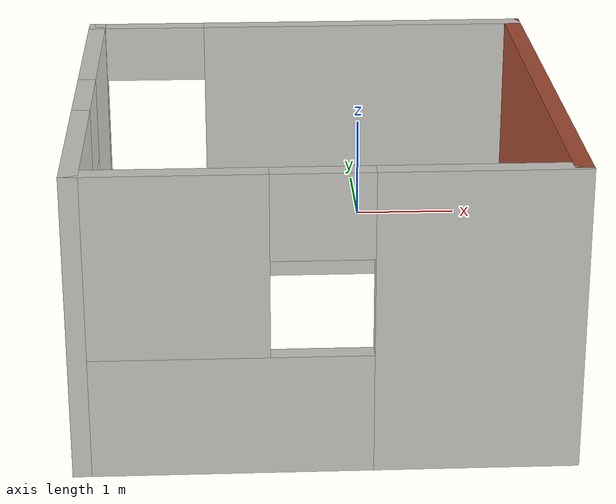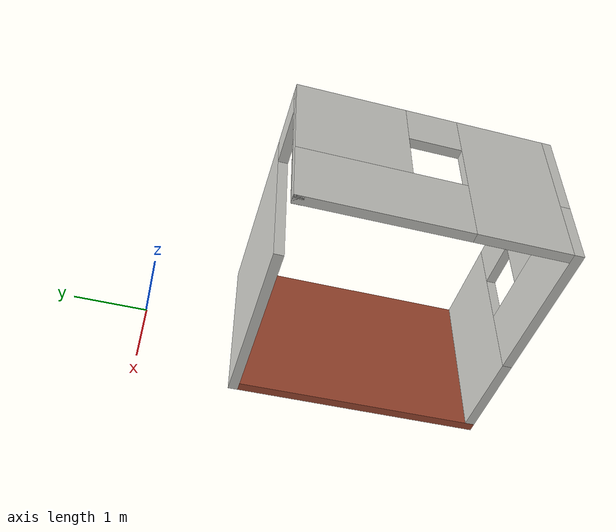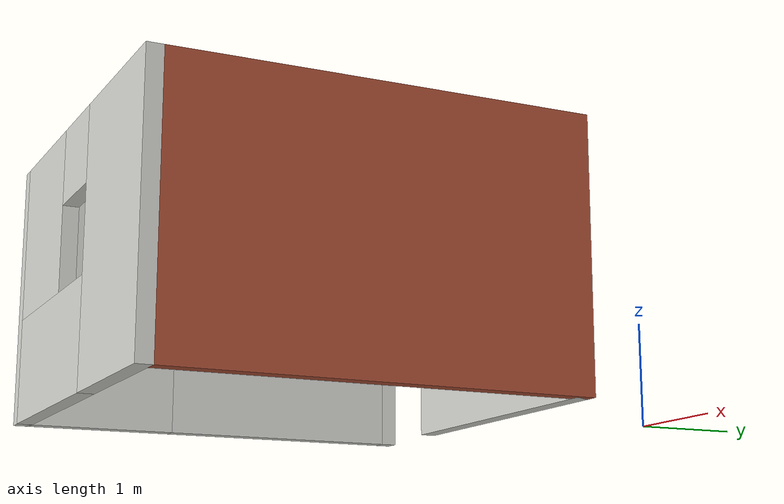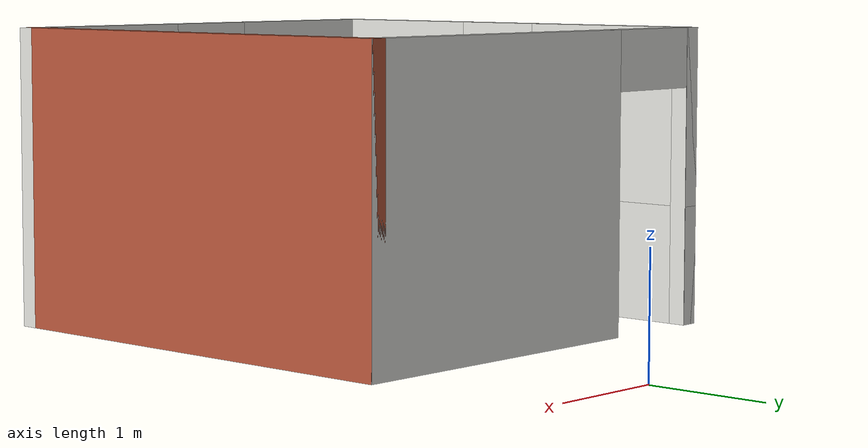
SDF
<?xml version='1.0'?>
<sdf version='1.6'>
  <model name='house_2'>
    <pose frame=''>-0.605 -3.455 0 0 -0 0</pose>
    <link name='Wall_0'>
      <pose frame=''>0 1.925 0 0 -0 0</pose>
      <visual name='Wall_0_Visual_0'>
        <pose frame=''>-1.91388 0 1.25 0 -0 0</pose>
        <geometry>
          <box>
            <size>0.152247 0.15 2.5</size>
          </box>
        </geometry>
        <material>
          <script>
            <uri>file://media/materials/scripts/gazebo.material</uri>
            <name>Gazebo/CeilingTiled</name>
          </script>
          <ambient>1 1 1 1</ambient>
        </material>
        <meta>
          <layer>0</layer>
        </meta>
      </visual>
      <collision name='Wall_0_Collision_0'>
        <geometry>
          <box>
            <size>0.152247 0.15 2.5</size>
          </box>
        </geometry>
        <pose frame=''>-1.91388 0 1.25 0 -0 0</pose>
      </collision>
      <visual name='Wall_0_Visual_1'>
        <pose frame=''>0.526123 0 1.25 0 -0 0</pose>
        <geometry>
          <box>
            <size>2.92775 0.15 2.5</size>
          </box>
        </geometry>
        <material>
          <script>
            <uri>file://media/materials/scripts/gazebo.material</uri>
            <name>Gazebo/CeilingTiled</name>
          </script>
          <ambient>1 1 1 1</ambient>
        </material>
        <meta>
          <layer>0</layer>
        </meta>
      </visual>
      <collision name='Wall_0_Collision_1'>
        <geometry>
          <box>
            <size>2.92775 0.15 2.5</size>
          </box>
        </geometry>
        <pose frame=''>0.526123 0 1.25 0 -0 0</pose>
      </collision>
      <visual name='Wall_0_Visual_2'>
        <pose frame=''>-1.38775 0 2.25 0 -0 0</pose>
        <geometry>
          <box>
            <size>0.9 0.15 0.5</size>
          </box>
        </geometry>
        <material>
          <script>
            <uri>file://media/materials/scripts/gazebo.material</uri>
            <name>Gazebo/CeilingTiled</name>
          </script>
          <ambient>1 1 1 1</ambient>
        </material>
        <meta>
          <layer>0</layer>
        </meta>
      </visual>
      <collision name='Wall_0_Collision_2'>
        <geometry>
          <box>
            <size>0.9 0.15 0.5</size>
          </box>
        </geometry>
        <pose frame=''>-1.38775 0 2.25 0 -0 0</pose>
      </collision>
    </link>
    <link name='Wall_1'>
      <collision name='Wall_1_Collision'>
        <geometry>
          <box>
            <size>4 0.15 2.5</size>
          </box>
        </geometry>
        <pose frame=''>0 0 1.25 0 -0 0</pose>
      </collision>
      <visual name='Wall_1_Visual'>
        <pose frame=''>0 0 1.25 0 -0 0</pose>
        <geometry>
          <box>
            <size>4 0.15 2.5</size>
          </box>
        </geometry>
        <material>
          <script>
            <uri>file://media/materials/scripts/gazebo.material</uri>
            <name>Gazebo/Bricks</name>
          </script>
          <ambient>1 1 1 1</ambient>
        </material>
        <meta>
          <layer>0</layer>
        </meta>
      </visual>
      <pose frame=''>1.915 -0 0 0 -0 -1.5708</pose>
    </link>
    <link name='Wall_2'>
      <pose frame=''>0 -1.925 0 0 -0 3.14159</pose>
      <visual name='Wall_2_Visual_0'>
        <pose frame=''>-1.17759 0 1.25 0 -0 0</pose>
        <geometry>
          <box>
            <size>1.62482 0.15 2.5</size>
          </box>
        </geometry>
        <material>
          <script>
            <uri>file://media/materials/scripts/gazebo.material</uri>
            <name>Gazebo/CeilingTiled</name>
          </script>
          <ambient>1 0.764706 0.305882 1</ambient>
        </material>
        <meta>
          <layer>0</layer>
        </meta>
      </visual>
      <collision name='Wall_2_Collision_0'>
        <geometry>
          <box>
            <size>1.62482 0.15 2.5</size>
          </box>
        </geometry>
        <pose frame=''>-1.17759 0 1.25 0 -0 0</pose>
      </collision>
      <visual name='Wall_2_Visual_1'>
        <pose frame=''>0.812409 0 0.5 0 -0 0</pose>
        <geometry>
          <box>
            <size>2.35518 0.15 1</size>
          </box>
        </geometry>
        <material>
          <script>
            <uri>file://media/materials/scripts/gazebo.material</uri>
            <name>Gazebo/CeilingTiled</name>
          </script>
          <ambient>1 0.764706 0.305882 1</ambient>
        </material>
        <meta>
          <layer>0</layer>
        </meta>
      </visual>
      <collision name='Wall_2_Collision_1'>
        <geometry>
          <box>
            <size>2.35518 0.15 1</size>
          </box>
        </geometry>
        <pose frame=''>0.812409 0 0.5 0 -0 0</pose>
      </collision>
      <visual name='Wall_2_Visual_2'>
        <pose frame=''>1.21241 0 1.75 0 -0 0</pose>
        <geometry>
          <box>
            <size>1.55518 0.15 1.5</size>
          </box>
        </geometry>
        <material>
          <script>
            <uri>file://media/materials/scripts/gazebo.material</uri>
            <name>Gazebo/CeilingTiled</name>
          </script>
          <ambient>1 0.764706 0.305882 1</ambient>
        </material>
        <meta>
          <layer>0</layer>
        </meta>
      </visual>
      <collision name='Wall_2_Collision_2'>
        <geometry>
          <box>
            <size>1.55518 0.15 1.5</size>
          </box>
        </geometry>
        <pose frame=''>1.21241 0 1.75 0 -0 0</pose>
      </collision>
      <visual name='Wall_2_Visual_3'>
        <pose frame=''>0.034818 0 2.15 0 -0 0</pose>
        <geometry>
          <box>
            <size>0.8 0.15 0.7</size>
          </box>
        </geometry>
        <material>
          <script>
            <uri>file://media/materials/scripts/gazebo.material</uri>
            <name>Gazebo/CeilingTiled</name>
          </script>
          <ambient>1 0.764706 0.305882 1</ambient>
        </material>
        <meta>
          <layer>0</layer>
        </meta>
      </visual>
      <collision name='Wall_2_Collision_3'>
        <geometry>
          <box>
            <size>0.8 0.15 0.7</size>
          </box>
        </geometry>
        <pose frame=''>0.034818 0 2.15 0 -0 0</pose>
      </collision>
    </link>
    <link name='Wall_3'>
      <pose frame=''>-1.915 -0 0 0 -0 1.5708</pose>
      <visual name='Wall_3_Visual_0'>
        <pose frame=''>-1.2325 0 1.25 0 -0 0</pose>
        <geometry>
          <box>
            <size>1.535 0.15 2.5</size>
          </box>
        </geometry>
        <material>
          <script>
            <uri>file://media/materials/scripts/gazebo.material</uri>
            <name>Gazebo/CeilingTiled</name>
          </script>
          <ambient>0.760784 0.662745 0.627451 1</ambient>
        </material>
        <meta>
          <layer>0</layer>
        </meta>
      </visual>
      <collision name='Wall_3_Collision_0'>
        <geometry>
          <box>
            <size>1.535 0.15 2.5</size>
          </box>
        </geometry>
        <pose frame=''>-1.2325 0 1.25 0 -0 0</pose>
      </collision>
      <visual name='Wall_3_Visual_1'>
        <pose frame=''>0.7675 0 0.5 0 -0 0</pose>
        <geometry>
          <box>
            <size>2.465 0.15 1</size>
          </box>
        </geometry>
        <material>
          <script>
            <uri>file://media/materials/scripts/gazebo.material</uri>
            <name>Gazebo/CeilingTiled</name>
          </script>
          <ambient>0.760784 0.662745 0.627451 1</ambient>
        </material>
        <meta>
          <layer>0</layer>
        </meta>
      </visual>
      <collision name='Wall_3_Collision_1'>
        <geometry>
          <box>
            <size>2.465 0.15 1</size>
          </box>
        </geometry>
        <pose frame=''>0.7675 0 0.5 0 -0 0</pose>
      </collision>
      <visual name='Wall_3_Visual_2'>
        <pose frame=''>1.1675 0 1.75 0 -0 0</pose>
        <geometry>
          <box>
            <size>1.665 0.15 1.5</size>
          </box>
        </geometry>
        <material>
          <script>
            <uri>file://media/materials/scripts/gazebo.material</uri>
            <name>Gazebo/CeilingTiled</name>
          </script>
          <ambient>0.760784 0.662745 0.627451 1</ambient>
        </material>
        <meta>
          <layer>0</layer>
        </meta>
      </visual>
      <collision name='Wall_3_Collision_2'>
        <geometry>
          <box>
            <size>1.665 0.15 1.5</size>
          </box>
        </geometry>
        <pose frame=''>1.1675 0 1.75 0 -0 0</pose>
      </collision>
      <visual name='Wall_3_Visual_3'>
        <pose frame=''>-0.065 0 2.15 0 -0 0</pose>
        <geometry>
          <box>
            <size>0.8 0.15 0.7</size>
          </box>
        </geometry>
        <material>
          <script>
            <uri>file://media/materials/scripts/gazebo.material</uri>
            <name>Gazebo/CeilingTiled</name>
          </script>
          <ambient>0.760784 0.662745 0.627451 1</ambient>
        </material>
        <meta>
          <layer>0</layer>
        </meta>
      </visual>
      <collision name='Wall_3_Collision_3'>
        <geometry>
          <box>
            <size>0.8 0.15 0.7</size>
          </box>
        </geometry>
        <pose frame=''>-0.065 0 2.15 0 -0 0</pose>
      </collision>
    </link>
    <static>1</static>
  </model>
</sdf>
